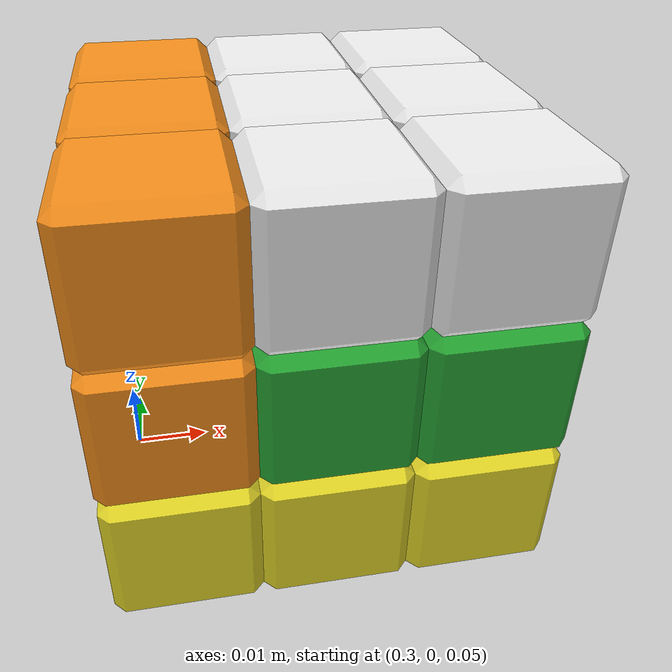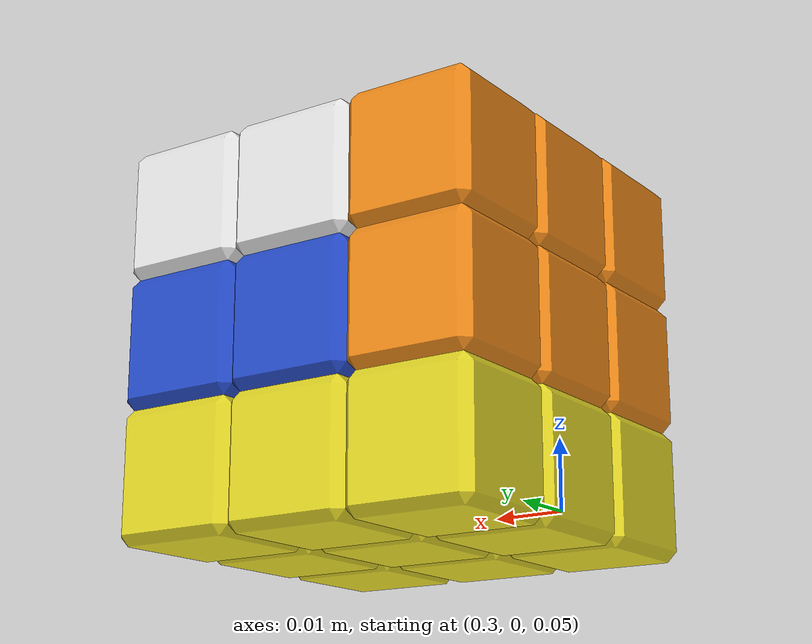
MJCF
<mujoco model="Cube 3x3x3">
  <compiler autolimits="true" angle="radian" texturedir="assets"/>
  <option timestep="0.01" integrator="implicitfast"/>
  <size memory="600K"/>
  <visual>
    <global azimuth="180" elevation="-20"/>
    <headlight ambient="0.3 0.3 0.3" diffuse="0.6 0.6 0.6" specular="0 0 0"/>
  </visual>
  <statistic meansize="0.0087" extent="0.1"/>
  <default>
    <geom mass="0.00253704"/>
    <motor ctrlrange="-0.05 0.05"/>
    <default class="cubelet">
      <joint type="ball" armature="0.00005" damping="0.0005" frictionloss="0.00005"/>
      <geom type="mesh" condim="1" mesh="cubelet" quat="1 0 0 1"/>
    </default>
    <default class="core">
      <geom type="sphere" contype="0" conaffinity="0" group="4" size="0.01"/>
    </default>
  </default>
  <asset>
    <texture type="skybox" builtin="gradient" width="512" height="512"/>
    <texture file="white.png" gridsize="3 4" gridlayout=".....F......" rgb1="0 0 0"/>
    <texture file="yellow.png" gridsize="3 4" gridlayout=".....B......" rgb1="0 0 0"/>
    <texture file="red.png" gridsize="3 4" gridlayout=".....D......" rgb1="0 0 0"/>
    <texture file="orange.png" gridsize="3 4" gridlayout=".....U......" rgb1="0 0 0"/>
    <texture file="blue.png" gridsize="3 4" gridlayout=".....R......" rgb1="0 0 0"/>
    <texture file="green.png" gridsize="3 4" gridlayout=".....L......" rgb1="0 0 0"/>
    <texture file="red_white.png" gridsize="3 4" gridlayout=".....DF....." rgb1="0 0 0"/>
    <texture file="orange_white.png" gridsize="3 4" gridlayout=".....UF....." rgb1="0 0 0"/>
    <texture file="blue_white.png" gridsize="3 4" gridlayout=".....RF....." rgb1="0 0 0"/>
    <texture file="green_white.png" gridsize="3 4" gridlayout=".....LF....." rgb1="0 0 0"/>
    <texture file="red_yellow.png" gridsize="3 4" gridlayout=".....DB....." rgb1="0 0 0"/>
    <texture file="orange_yellow.png" gridsize="3 4" gridlayout=".....UB....." rgb1="0 0 0"/>
    <texture file="blue_yellow.png" gridsize="3 4" gridlayout=".....RB....." rgb1="0 0 0"/>
    <texture file="green_yellow.png" gridsize="3 4" gridlayout=".....LB....." rgb1="0 0 0"/>
    <texture file="orange_red.png" gridsize="3 4" gridlayout=".....UD....." rgb1="0 0 0"/>
    <texture file="blue_red.png" gridsize="3 4" gridlayout=".....RD....." rgb1="0 0 0"/>
    <texture file="green_red.png" gridsize="3 4" gridlayout=".....LD....." rgb1="0 0 0"/>
    <texture file="blue_orange.png" gridsize="3 4" gridlayout=".....RU....." rgb1="0 0 0"/>
    <texture file="green_orange.png" gridsize="3 4" gridlayout=".....LU....." rgb1="0 0 0"/>
    <texture file="blue_red_white.png" gridsize="3 4" gridlayout=".....RDF...." rgb1="0 0 0"/>
    <texture file="green_red_white.png" gridsize="3 4" gridlayout=".....LDF...." rgb1="0 0 0"/>
    <texture file="blue_orange_white.png" gridsize="3 4" gridlayout=".....RUF...." rgb1="0 0 0"/>
    <texture file="green_orange_white.png" gridsize="3 4" gridlayout=".....LUF...." rgb1="0 0 0"/>
    <texture file="blue_red_yellow.png" gridsize="3 4" gridlayout=".....RDB...." rgb1="0 0 0"/>
    <texture file="green_red_yellow.png" gridsize="3 4" gridlayout=".....LDB...." rgb1="0 0 0"/>
    <texture file="blue_orange_yellow.png" gridsize="3 4" gridlayout=".....RUB...." rgb1="0 0 0"/>
    <texture file="green_orange_yellow.png" gridsize="3 4" gridlayout=".....LUB...." rgb1="0 0 0"/>
    <material name="white" texture="white"/>
    <material name="yellow" texture="yellow"/>
    <material name="red" texture="red"/>
    <material name="orange" texture="orange"/>
    <material name="blue" texture="blue"/>
    <material name="green" texture="green"/>
    <material name="red_white" texture="red_white"/>
    <material name="orange_white" texture="orange_white"/>
    <material name="blue_white" texture="blue_white"/>
    <material name="green_white" texture="green_white"/>
    <material name="red_yellow" texture="red_yellow"/>
    <material name="orange_yellow" texture="orange_yellow"/>
    <material name="blue_yellow" texture="blue_yellow"/>
    <material name="green_yellow" texture="green_yellow"/>
    <material name="orange_red" texture="orange_red"/>
    <material name="blue_red" texture="blue_red"/>
    <material name="green_red" texture="green_red"/>
    <material name="blue_orange" texture="blue_orange"/>
    <material name="green_orange" texture="green_orange"/>
    <material name="blue_red_white" texture="blue_red_white"/>
    <material name="green_red_white" texture="green_red_white"/>
    <material name="blue_orange_white" texture="blue_orange_white"/>
    <material name="green_orange_white" texture="green_orange_white"/>
    <material name="blue_red_yellow" texture="blue_red_yellow"/>
    <material name="green_red_yellow" texture="green_red_yellow"/>
    <material name="blue_orange_yellow" texture="blue_orange_yellow"/>
    <material name="green_orange_yellow" texture="green_orange_yellow"/>
    <mesh name="cubelet" vertex="0.008075 0.0095 -0.008075 -0.008075 0.0095 -0.008075 0.008075 0.0095 0.008075 -0.008075 0.0095 0.008075 -0.0095 0.008075 -0.008075 -0.0095 -0.008075 -0.008075 -0.0095 0.008075 0.008075 -0.0095 -0.008075 0.008075 0.008075 -0.0095 -0.008075 0.008075 -0.0095 0.008075 -0.008075 -0.0095 -0.008075 -0.008075 -0.0095 0.008075 0.0095 0.008075 0.008075 0.0095 -0.008075 0.008075 0.0095 0.008075 -0.008075 0.0095 -0.008075 -0.008075 0.008075 0.008075 0.0095 -0.008075 0.008075 0.0095 0.008075 -0.008075 0.0095 -0.008075 -0.008075 0.0095 0.008075 -0.008075 -0.0095 -0.008075 -0.008075 -0.0095 0.008075 0.008075 -0.0095 -0.008075 0.008075 -0.0095"/>
  </asset>
  <worldbody>
    <light pos="0 0 1"/>
    <body name="core" pos="0.325 0.0 0.075" childclass="cubelet">
      <freejoint/>
      <geom class="core"/>
      <body name="pX">
        <joint name="pX" type="hinge" axis="1 0 0"/>
        <geom material="red" pos="0.019 0 0"/>
      </body>
      <body name="nX">
        <joint name="nX" type="hinge" axis="-1 0 0"/>
        <geom material="orange" pos="-0.019 0 0"/>
      </body>
      <body name="pY">
        <joint name="pY" type="hinge" axis="0 1 0"/>
        <geom material="blue" pos="0 0.019 0"/>
      </body>
      <body name="nY">
        <joint name="nY" type="hinge" axis="0 -1 0"/>
        <geom material="green" pos="0 -0.019 0"/>
      </body>
      <body name="pZ">
        <joint name="pZ" type="hinge" axis="0 0 1"/>
        <geom material="white" pos="0 0 0.019"/>
      </body>
      <body name="nZ">
        <joint name="nZ" type="hinge" axis="0 0 -1"/>
        <geom material="yellow" pos="0 0 -0.019"/>
      </body>
      <body name="pX_pY">
        <joint name="pX_pY"/>
        <geom material="blue_red" pos="0.019 0.019 0"/>
      </body>
      <body name="nY_pX">
        <joint name="nY_pX"/>
        <geom material="green_red" pos="0.019 -0.019 0"/>
      </body>
      <body name="pX_pZ">
        <joint name="pX_pZ"/>
        <geom material="red_white" pos="0.019 0 0.019"/>
      </body>
      <body name="nZ_pX">
        <joint name="nZ_pX"/>
        <geom material="red_yellow" pos="0.019 0 -0.019"/>
      </body>
      <body name="nX_pY">
        <joint name="nX_pY"/>
        <geom material="blue_orange" pos="-0.019 0.019 0"/>
      </body>
      <body name="nX_nY">
        <joint name="nX_nY"/>
        <geom material="green_orange" pos="-0.019 -0.019 0"/>
      </body>
      <body name="nX_pZ">
        <joint name="nX_pZ"/>
        <geom material="orange_white" pos="-0.019 0 0.019"/>
      </body>
      <body name="nX_nZ">
        <joint name="nX_nZ"/>
        <geom material="orange_yellow" pos="-0.019 0 -0.019"/>
      </body>
      <body name="pY_pZ">
        <joint name="pY_pZ"/>
        <geom material="blue_white" pos="0 0.019 0.019"/>
      </body>
      <body name="nZ_pY">
        <joint name="nZ_pY"/>
        <geom material="blue_yellow" pos="0 0.019 -0.019"/>
      </body>
      <body name="nY_pZ">
        <joint name="nY_pZ"/>
        <geom material="green_white" pos="0 -0.019 0.019"/>
      </body>
      <body name="nY_nZ">
        <joint name="nY_nZ"/>
        <geom material="green_yellow" pos="0 -0.019 -0.019"/>
      </body>
      <body name="pX_pY_pZ">
        <joint name="pX_pY_pZ"/>
        <geom material="blue_red_white" pos="0.019 0.019 0.019"/>
      </body>
      <body name="nZ_pX_pY">
        <joint name="nZ_pX_pY"/>
        <geom material="blue_red_yellow" pos="0.019 0.019 -0.019"/>
      </body>
      <body name="nY_pX_pZ">
        <joint name="nY_pX_pZ"/>
        <geom material="green_red_white" pos="0.019 -0.019 0.019"/>
      </body>
      <body name="nY_nZ_pX">
        <joint name="nY_nZ_pX"/>
        <geom material="green_red_yellow" pos="0.019 -0.019 -0.019"/>
      </body>
      <body name="nX_pY_pZ">
        <joint name="nX_pY_pZ"/>
        <geom material="blue_orange_white" pos="-0.019 0.019 0.019"/>
      </body>
      <body name="nX_nZ_pY">
        <joint name="nX_nZ_pY"/>
        <geom material="blue_orange_yellow" pos="-0.019 0.019 -0.019"/>
      </body>
      <body name="nX_nY_pZ">
        <joint name="nX_nY_pZ"/>
        <geom material="green_orange_white" pos="-0.019 -0.019 0.019"/>
      </body>
      <body name="nX_nY_nZ">
        <joint name="nX_nY_nZ"/>
        <geom material="green_orange_yellow" pos="-0.019 -0.019 -0.019"/>
      </body>
    </body>
  </worldbody>

  <sensor>
    <framepos name="trace0" objtype="body" objname="core"/>
    <framepos name="cube_position" objtype="body" objname="core"/>
    <framequat name="cube_orientation" objtype="body" objname="core"/>
    <framelinvel name="cube_linear_velocity" objtype="body" objname="core"/>
    <frameangvel name="cube_angular_velocity" objtype="body" objname="core"/>
  </sensor>
</mujoco>
